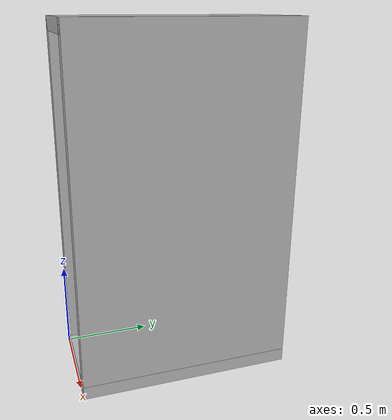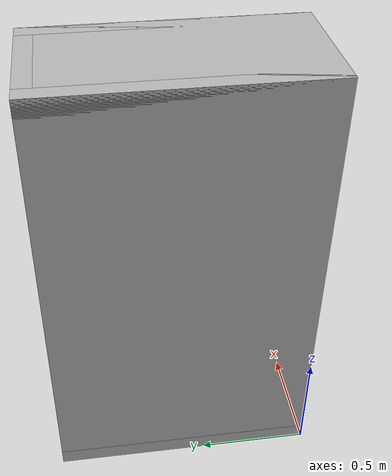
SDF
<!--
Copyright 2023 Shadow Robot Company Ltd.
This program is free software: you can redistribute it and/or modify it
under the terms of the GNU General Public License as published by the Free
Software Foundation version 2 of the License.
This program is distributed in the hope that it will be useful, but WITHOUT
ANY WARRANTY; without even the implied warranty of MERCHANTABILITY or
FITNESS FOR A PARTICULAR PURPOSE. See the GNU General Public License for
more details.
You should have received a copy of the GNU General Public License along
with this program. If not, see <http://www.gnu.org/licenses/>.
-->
<?xml version='1.0'?>

<sdf version="1.4">
<model name="server_rack">
    <static>true</static>

    <link name="server_bottom">
      <collision name="server_bottom_col">
        <pose>0.3 0.6 0.0375 0 0 0 </pose>
        <geometry>
          <box>
            <size>0.6 1.2 0.075</size>
          </box>
        </geometry>
      </collision>
      <visual name="server_bottom_vis">
        <pose>0.3 0.6 0.0375 0 0 0 </pose>
        <geometry>
          <box>
            <size>0.6 1.2 0.075</size>
          </box>
        </geometry>
      </visual>
    </link>

    <link name="server_wall_left">
      <collision name="server_wall_left_col">
        <pose>0.0375 0.6 1.025 0 0 0 </pose>
        <geometry>
          <box>
            <size>0.075 1.2 1.9</size>
          </box>
        </geometry>
      </collision>
      <visual name="server_wall_left_vis">
        <pose>0.0375 0.6 1.025 0 0 0 </pose>
        <geometry>
          <box>
            <size>0.075 1.2 1.9</size>
          </box>
        </geometry>
      </visual>
    </link>

    <link name="server_wall_right">
      <collision name="server_wall_right_col">
        <pose>0.5625 0.6 1.025 0 0 0 </pose>
        <geometry>
          <box>
            <size>0.075 1.2 1.9</size>
          </box>
        </geometry>
      </collision>
      <visual name="server_wall_right_vis">
        <pose>0.5625 0.6 1.025 0 0 0 </pose>
        <geometry>
          <box>
            <size>0.075 1.2 1.9</size>
          </box>
        </geometry>
      </visual>
    </link>

    <link name="server_wall_back">
      <collision name="server_wall_back_col">
        <pose>0.3 1.1625 1.025 0 0 0 </pose>
        <geometry>
          <box>
            <size>0.45 0.075 1.9</size>
          </box>
        </geometry>
      </collision>
      <visual name="server_wall_back_vis">
        <pose>0.3 1.1625 1.025 0 0 0 </pose>
        <geometry>
          <box>
            <size>0.45 0.075 1.9</size>
          </box>
        </geometry>
      </visual>
    </link>

    <link name="server_wall_top">
      <collision name="server_wall_back_col">
        <pose>0.3 0.6 1.9375 0 0 0 </pose>
        <geometry>
          <box>
            <size>0.6 1.2 0.075</size>
          </box>
        </geometry>
      </collision>
      <visual name="server_wall_back_vis">
        <pose>0.3 0.6 1.9375 0 0 0 </pose>
        <geometry>
          <box>
            <size>0.6 1.2 0.075</size>
          </box>
        </geometry>
      </visual>
    </link>

</model>
</sdf>
